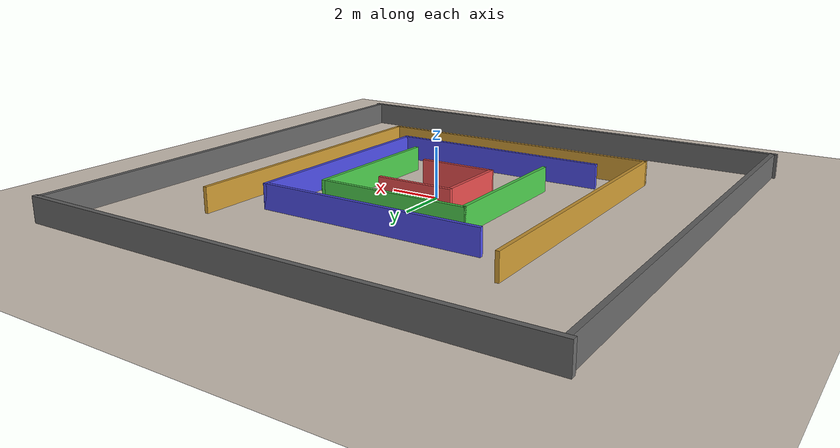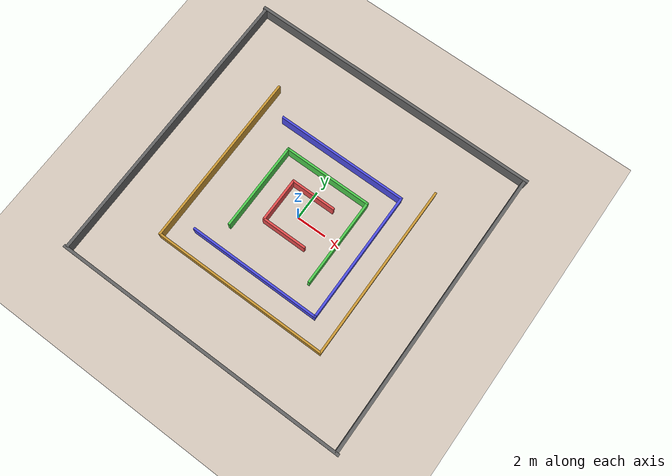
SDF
<?xml version="1.0" ?>
<!-- WORLD: Spiral — A spiral wall path winding outward from center -->
<sdf version="1.6">
  <world name="default">
    <physics name="1ms" type="ignored"><max_step_size>0.001</max_step_size><real_time_factor>1.0</real_time_factor></physics>
    <plugin filename="libignition-gazebo-physics-system.so" name="ignition::gazebo::systems::Physics"/>
    <plugin filename="libignition-gazebo-user-commands-system.so" name="ignition::gazebo::systems::UserCommands"/>
    <plugin filename="libignition-gazebo-scene-broadcaster-system.so" name="ignition::gazebo::systems::SceneBroadcaster"/>
    <light type="directional" name="sun"><cast_shadows>true</cast_shadows><pose>0 0 10 0 0 0</pose><diffuse>0.85 0.85 0.85 1</diffuse><specular>0.2 0.2 0.2 1</specular><attenuation><range>1000</range><constant>0.9</constant><linear>0.01</linear><quadratic>0.001</quadratic></attenuation><direction>-0.5 0.1 -0.9</direction></light>
    <model name="ground"><static>true</static><link name="l"><collision name="c"><geometry><plane><normal>0 0 1</normal><size>100 100</size></plane></geometry></collision><visual name="v"><geometry><plane><normal>0 0 1</normal><size>100 100</size></plane></geometry><material><ambient>0.85 0.8 0.75 1</ambient><diffuse>0.85 0.8 0.75 1</diffuse></material></visual></link></model>
    <model name="wn"><static>true</static><pose>0 10 0.5 0 0 0</pose><link name="l"><collision name="c"><geometry><box><size>20.4 0.2 1</size></box></geometry></collision><visual name="v"><geometry><box><size>20.4 0.2 1</size></box></geometry><material><ambient>0.4 0.4 0.4 1</ambient><diffuse>0.4 0.4 0.4 1</diffuse></material></visual></link></model>
    <model name="ws"><static>true</static><pose>0 -10 0.5 0 0 0</pose><link name="l"><collision name="c"><geometry><box><size>20.4 0.2 1</size></box></geometry></collision><visual name="v"><geometry><box><size>20.4 0.2 1</size></box></geometry><material><ambient>0.4 0.4 0.4 1</ambient><diffuse>0.4 0.4 0.4 1</diffuse></material></visual></link></model>
    <model name="we"><static>true</static><pose>10 0 0.5 0 0 0</pose><link name="l"><collision name="c"><geometry><box><size>0.2 20 1</size></box></geometry></collision><visual name="v"><geometry><box><size>0.2 20 1</size></box></geometry><material><ambient>0.4 0.4 0.4 1</ambient><diffuse>0.4 0.4 0.4 1</diffuse></material></visual></link></model>
    <model name="ww"><static>true</static><pose>-10 0 0.5 0 0 0</pose><link name="l"><collision name="c"><geometry><box><size>0.2 20 1</size></box></geometry></collision><visual name="v"><geometry><box><size>0.2 20 1</size></box></geometry><material><ambient>0.4 0.4 0.4 1</ambient><diffuse>0.4 0.4 0.4 1</diffuse></material></visual></link></model>

    <!-- Spiral walls winding clockwise outward from center -->
    <!-- Ring 1: inner 3×3, open east -->
    <model name="r1n"><static>true</static><pose>0 1.5 0.5 0 0 0</pose><link name="l"><collision name="c"><geometry><box><size>3.15 0.15 1</size></box></geometry></collision><visual name="v"><geometry><box><size>3.15 0.15 1</size></box></geometry><material><ambient>0.9 0.3 0.3 1</ambient><diffuse>0.9 0.3 0.3 1</diffuse></material></visual></link></model>
    <model name="r1w"><static>true</static><pose>-1.5 0 0.5 0 0 0</pose><link name="l"><collision name="c"><geometry><box><size>0.15 3 1</size></box></geometry></collision><visual name="v"><geometry><box><size>0.15 3 1</size></box></geometry><material><ambient>0.9 0.3 0.3 1</ambient><diffuse>0.9 0.3 0.3 1</diffuse></material></visual></link></model>
    <model name="r1s"><static>true</static><pose>0 -1.5 0.5 0 0 0</pose><link name="l"><collision name="c"><geometry><box><size>3.15 0.15 1</size></box></geometry></collision><visual name="v"><geometry><box><size>3.15 0.15 1</size></box></geometry><material><ambient>0.9 0.3 0.3 1</ambient><diffuse>0.9 0.3 0.3 1</diffuse></material></visual></link></model>
    <!-- Ring 2: 6×6, open south -->
    <model name="r2e"><static>true</static><pose>3 0 0.5 0 0 0</pose><link name="l"><collision name="c"><geometry><box><size>0.15 6.15 1</size></box></geometry></collision><visual name="v"><geometry><box><size>0.15 6.15 1</size></box></geometry><material><ambient>0.3 0.8 0.3 1</ambient><diffuse>0.3 0.8 0.3 1</diffuse></material></visual></link></model>
    <model name="r2n"><static>true</static><pose>0 3 0.5 0 0 0</pose><link name="l"><collision name="c"><geometry><box><size>6.15 0.15 1</size></box></geometry></collision><visual name="v"><geometry><box><size>6.15 0.15 1</size></box></geometry><material><ambient>0.3 0.8 0.3 1</ambient><diffuse>0.3 0.8 0.3 1</diffuse></material></visual></link></model>
    <model name="r2w"><static>true</static><pose>-3 0 0.5 0 0 0</pose><link name="l"><collision name="c"><geometry><box><size>0.15 6.15 1</size></box></geometry></collision><visual name="v"><geometry><box><size>0.15 6.15 1</size></box></geometry><material><ambient>0.3 0.8 0.3 1</ambient><diffuse>0.3 0.8 0.3 1</diffuse></material></visual></link></model>
    <!-- Ring 3: 9×9, open west -->
    <model name="r3s"><static>true</static><pose>0 -4.5 0.5 0 0 0</pose><link name="l"><collision name="c"><geometry><box><size>9.15 0.15 1</size></box></geometry></collision><visual name="v"><geometry><box><size>9.15 0.15 1</size></box></geometry><material><ambient>0.3 0.3 0.9 1</ambient><diffuse>0.3 0.3 0.9 1</diffuse></material></visual></link></model>
    <model name="r3e"><static>true</static><pose>4.5 0 0.5 0 0 0</pose><link name="l"><collision name="c"><geometry><box><size>0.15 9.15 1</size></box></geometry></collision><visual name="v"><geometry><box><size>0.15 9.15 1</size></box></geometry><material><ambient>0.3 0.3 0.9 1</ambient><diffuse>0.3 0.3 0.9 1</diffuse></material></visual></link></model>
    <model name="r3n"><static>true</static><pose>0 4.5 0.5 0 0 0</pose><link name="l"><collision name="c"><geometry><box><size>9.15 0.15 1</size></box></geometry></collision><visual name="v"><geometry><box><size>9.15 0.15 1</size></box></geometry><material><ambient>0.3 0.3 0.9 1</ambient><diffuse>0.3 0.3 0.9 1</diffuse></material></visual></link></model>
    <!-- Ring 4: partial — 12m, open north -->
    <model name="r4w"><static>true</static><pose>-6 0 0.5 0 0 0</pose><link name="l"><collision name="c"><geometry><box><size>0.15 12.15 1</size></box></geometry></collision><visual name="v"><geometry><box><size>0.15 12.15 1</size></box></geometry><material><ambient>0.8 0.6 0.2 1</ambient><diffuse>0.8 0.6 0.2 1</diffuse></material></visual></link></model>
    <model name="r4s"><static>true</static><pose>0 -6 0.5 0 0 0</pose><link name="l"><collision name="c"><geometry><box><size>12.15 0.15 1</size></box></geometry></collision><visual name="v"><geometry><box><size>12.15 0.15 1</size></box></geometry><material><ambient>0.8 0.6 0.2 1</ambient><diffuse>0.8 0.6 0.2 1</diffuse></material></visual></link></model>
    <model name="r4e"><static>true</static><pose>6 0 0.5 0 0 0</pose><link name="l"><collision name="c"><geometry><box><size>0.15 12.15 1</size></box></geometry></collision><visual name="v"><geometry><box><size>0.15 12.15 1</size></box></geometry><material><ambient>0.8 0.6 0.2 1</ambient><diffuse>0.8 0.6 0.2 1</diffuse></material></visual></link></model>
  </world>
</sdf>
